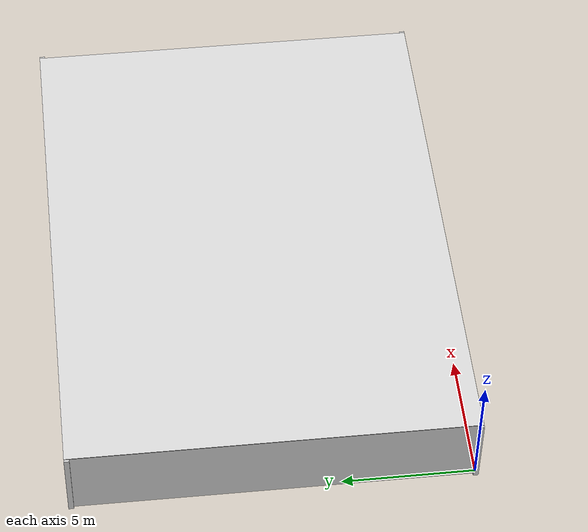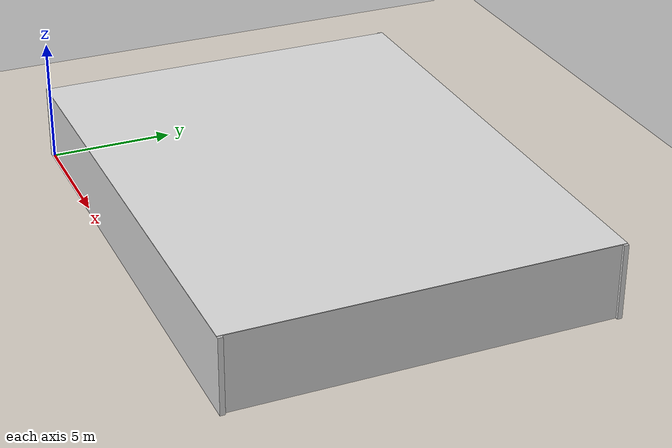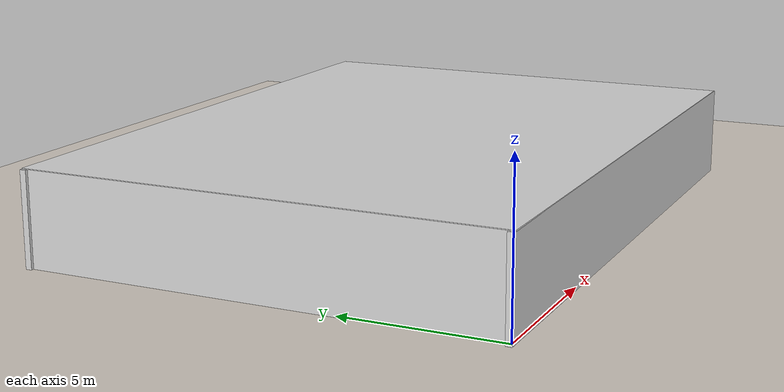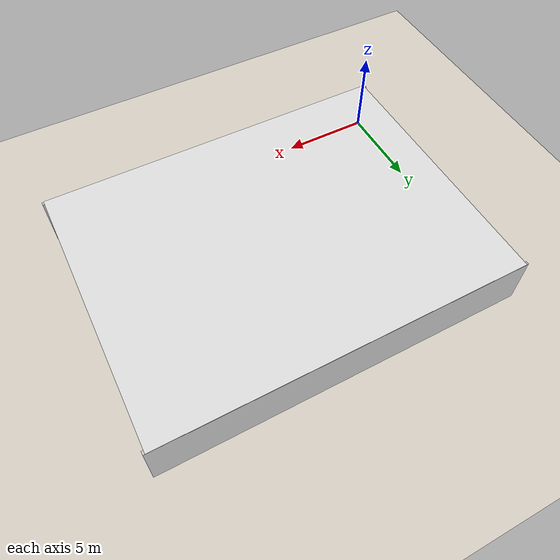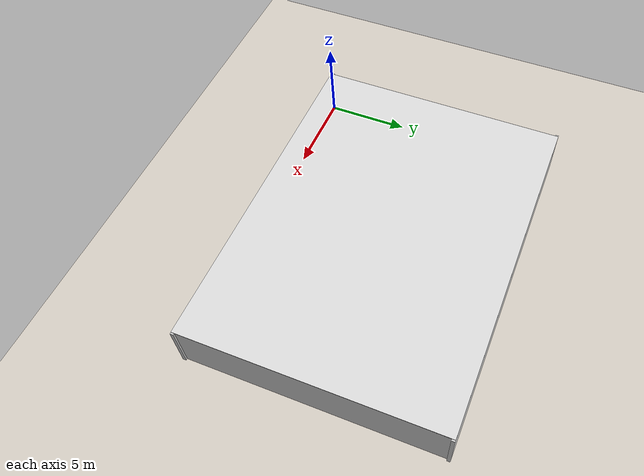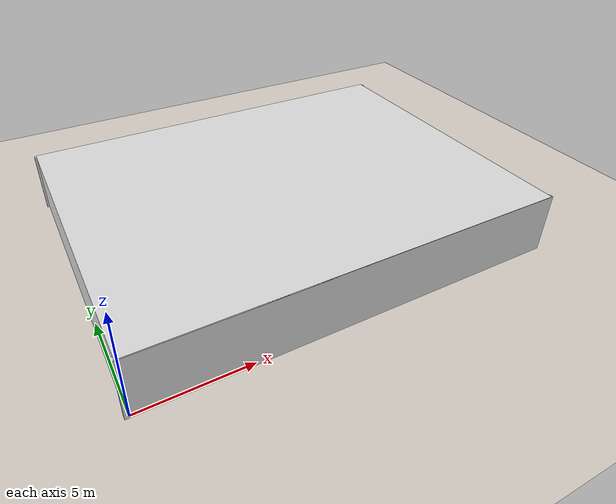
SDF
<?xml version="1.0" ?>
<sdf version="1.9">
  <world name="indoor_office">

    <!-- ═══════════════════════════════ PLUGINS ═══════════════════════════════ -->
    <physics type="ode">
      <max_step_size>0.008</max_step_size>
      <real_time_factor>1.0</real_time_factor>
    </physics>
    <plugin name="gz::sim::systems::Physics"         filename="gz-sim-physics-system"/>
    <plugin name="gz::sim::systems::UserCommands"    filename="gz-sim-user-commands-system"/>
    <plugin name="gz::sim::systems::SceneBroadcaster" filename="gz-sim-scene-broadcaster-system"/>
    <plugin name="gz::sim::systems::Contact"         filename="gz-sim-contact-system"/>
    <plugin name="gz::sim::systems::Sensors"         filename="gz-sim-sensors-system">
      <render_engine>ogre2</render_engine>
    </plugin>
    <!-- IMU: physics-based sensor, needs its own system (separate from Sensors/ogre2) -->
    <plugin name="gz::sim::systems::Imu"             filename="gz-sim-imu-system"/>
    <!-- Particle emitter: required for smoke/fog particle_emitter elements in the world -->
    <plugin name="gz::sim::systems::ParticleEmitter" filename="gz-sim-particle-emitter-system"/>

    <!-- ═══════════════════════════════ SCENE ════════════════════════════════ -->
    <scene>
      <ambient>0.6 0.6 0.6 1</ambient>
      <background>0.4 0.4 0.4 1</background>
      <shadows>0</shadows>
      <grid>false</grid>
    </scene>

    <light type="directional" name="ceiling_light">
      <cast_shadows>false</cast_shadows>
      <pose>10 7.5 8 0 0 0</pose>
      <diffuse>0.9 0.9 0.85 1</diffuse>
      <specular>0.3 0.3 0.3 1</specular>
      <direction>0 0 -1</direction>
      <attenuation>
        <range>30</range>
        <constant>0.5</constant>
        <linear>0.01</linear>
        <quadratic>0.001</quadratic>
      </attenuation>
    </light>

    <!-- ══════════════════════════ GROUND PLANE ═══════════════════════════════ -->
    <model name="ground_plane">
      <static>true</static>
      <link name="link">
        <collision name="collision">
          <geometry><plane><normal>0 0 1</normal><size>100 100</size></plane></geometry>
        </collision>
        <visual name="visual">
          <geometry><plane><normal>0 0 1</normal><size>100 100</size></plane></geometry>
          <material>
            <ambient>0.85 0.82 0.78 1</ambient>
            <diffuse>0.85 0.82 0.78 1</diffuse>
            <specular>0.1 0.1 0.1 1</specular>
          </material>
        </visual>
      </link>
    </model>

    <!-- ══════════════════════════ OUTER WALLS ════════════════════════════════ -->
    <!-- South wall — y=0 -->
    <model name="wall_south">
      <static>true</static>
      <pose>10 0 1.5 0 0 0</pose>
      <link name="link">
        <collision name="col"><geometry><box><size>20.4 0.2 3.0</size></box></geometry></collision>
        <visual name="vis">
          <geometry><box><size>20.4 0.2 3.0</size></box></geometry>
          <material><ambient>0.82 0.82 0.82 1</ambient><diffuse>0.82 0.82 0.82 1</diffuse></material>
        </visual>
      </link>
    </model>

    <!-- North wall — y=15 -->
    <model name="wall_north">
      <static>true</static>
      <pose>10 15 1.5 0 0 0</pose>
      <link name="link">
        <collision name="col"><geometry><box><size>20.4 0.2 3.0</size></box></geometry></collision>
        <visual name="vis">
          <geometry><box><size>20.4 0.2 3.0</size></box></geometry>
          <material><ambient>0.82 0.82 0.82 1</ambient><diffuse>0.82 0.82 0.82 1</diffuse></material>
        </visual>
      </link>
    </model>

    <!-- West wall — x=0 -->
    <model name="wall_west">
      <static>true</static>
      <pose>0 7.5 1.5 0 0 0</pose>
      <link name="link">
        <collision name="col"><geometry><box><size>0.2 15.0 3.0</size></box></geometry></collision>
        <visual name="vis">
          <geometry><box><size>0.2 15.0 3.0</size></box></geometry>
          <material><ambient>0.82 0.82 0.82 1</ambient><diffuse>0.82 0.82 0.82 1</diffuse></material>
        </visual>
      </link>
    </model>

    <!-- East wall — x=20 -->
    <model name="wall_east">
      <static>true</static>
      <pose>20 7.5 1.5 0 0 0</pose>
      <link name="link">
        <collision name="col"><geometry><box><size>0.2 15.0 3.0</size></box></geometry></collision>
        <visual name="vis">
          <geometry><box><size>0.2 15.0 3.0</size></box></geometry>
          <material><ambient>0.82 0.82 0.82 1</ambient><diffuse>0.82 0.82 0.82 1</diffuse></material>
        </visual>
      </link>
    </model>

    <!-- ════════════════════════ INTERIOR WALLS ═══════════════════════════════ -->

    <!-- Office A / B divider (x=9, y=[0,6.5], door at y=[2.5,3.5]) -->
    <model name="wall_ab_south">
      <static>true</static>
      <pose>9 1.25 1.5 0 0 0</pose>
      <link name="link">
        <collision name="col"><geometry><box><size>0.15 2.5 3.0</size></box></geometry></collision>
        <visual name="vis">
          <geometry><box><size>0.15 2.5 3.0</size></box></geometry>
          <material><ambient>0.78 0.78 0.78 1</ambient><diffuse>0.78 0.78 0.78 1</diffuse></material>
        </visual>
      </link>
    </model>
    <model name="wall_ab_north">
      <static>true</static>
      <pose>9 5.0 1.5 0 0 0</pose>
      <link name="link">
        <collision name="col"><geometry><box><size>0.15 3.0 3.0</size></box></geometry></collision>
        <visual name="vis">
          <geometry><box><size>0.15 3.0 3.0</size></box></geometry>
          <material><ambient>0.78 0.78 0.78 1</ambient><diffuse>0.78 0.78 0.78 1</diffuse></material>
        </visual>
      </link>
    </model>
    <!-- Door header above Office A/B door -->
    <model name="wall_ab_door_header">
      <static>true</static>
      <pose>9 3.0 2.75 0 0 0</pose>
      <link name="link">
        <collision name="col"><geometry><box><size>0.15 1.0 0.5</size></box></geometry></collision>
        <visual name="vis">
          <geometry><box><size>0.15 1.0 0.5</size></box></geometry>
          <material><ambient>0.78 0.78 0.78 1</ambient><diffuse>0.78 0.78 0.78 1</diffuse></material>
        </visual>
      </link>
    </model>

    <!-- Office → Corridor wall (y=6.5, door at x=[2,3] and x=[14,15]) -->
    <model name="wall_offices_corridor_west">
      <static>true</static>
      <pose>1.0 6.5 1.5 0 0 0</pose>
      <link name="link">
        <collision name="col"><geometry><box><size>2.0 0.15 3.0</size></box></geometry></collision>
        <visual name="vis">
          <geometry><box><size>2.0 0.15 3.0</size></box></geometry>
          <material><ambient>0.78 0.78 0.78 1</ambient><diffuse>0.78 0.78 0.78 1</diffuse></material>
        </visual>
      </link>
    </model>
    <model name="wall_offices_corridor_mid">
      <static>true</static>
      <pose>8.5 6.5 1.5 0 0 0</pose>
      <link name="link">
        <collision name="col"><geometry><box><size>11.0 0.15 3.0</size></box></geometry></collision>
        <visual name="vis">
          <geometry><box><size>11.0 0.15 3.0</size></box></geometry>
          <material><ambient>0.78 0.78 0.78 1</ambient><diffuse>0.78 0.78 0.78 1</diffuse></material>
        </visual>
      </link>
    </model>
    <model name="wall_offices_corridor_east">
      <static>true</static>
      <pose>17.5 6.5 1.5 0 0 0</pose>
      <link name="link">
        <collision name="col"><geometry><box><size>5.0 0.15 3.0</size></box></geometry></collision>
        <visual name="vis">
          <geometry><box><size>5.0 0.15 3.0</size></box></geometry>
          <material><ambient>0.78 0.78 0.78 1</ambient><diffuse>0.78 0.78 0.78 1</diffuse></material>
        </visual>
      </link>
    </model>
    <!-- Door headers above corridor doors -->
    <model name="wall_door_header_officeA">
      <static>true</static>
      <pose>2.5 6.5 2.75 0 0 0</pose>
      <link name="link">
        <collision name="col"><geometry><box><size>1.0 0.15 0.5</size></box></geometry></collision>
        <visual name="vis">
          <geometry><box><size>1.0 0.15 0.5</size></box></geometry>
          <material><ambient>0.78 0.78 0.78 1</ambient><diffuse>0.78 0.78 0.78 1</diffuse></material>
        </visual>
      </link>
    </model>
    <model name="wall_door_header_officeB">
      <static>true</static>
      <pose>14.5 6.5 2.75 0 0 0</pose>
      <link name="link">
        <collision name="col"><geometry><box><size>1.0 0.15 0.5</size></box></geometry></collision>
        <visual name="vis">
          <geometry><box><size>1.0 0.15 0.5</size></box></geometry>
          <material><ambient>0.78 0.78 0.78 1</ambient><diffuse>0.78 0.78 0.78 1</diffuse></material>
        </visual>
      </link>
    </model>

    <!-- Corridor → Meeting Room wall (y=9.5, door at x=[9,10]) -->
    <model name="wall_corridor_meeting_west">
      <static>true</static>
      <pose>4.5 9.5 1.5 0 0 0</pose>
      <link name="link">
        <collision name="col"><geometry><box><size>9.0 0.15 3.0</size></box></geometry></collision>
        <visual name="vis">
          <geometry><box><size>9.0 0.15 3.0</size></box></geometry>
          <material><ambient>0.78 0.78 0.78 1</ambient><diffuse>0.78 0.78 0.78 1</diffuse></material>
        </visual>
      </link>
    </model>
    <model name="wall_corridor_meeting_east">
      <static>true</static>
      <pose>15.0 9.5 1.5 0 0 0</pose>
      <link name="link">
        <collision name="col"><geometry><box><size>10.0 0.15 3.0</size></box></geometry></collision>
        <visual name="vis">
          <geometry><box><size>10.0 0.15 3.0</size></box></geometry>
          <material><ambient>0.78 0.78 0.78 1</ambient><diffuse>0.78 0.78 0.78 1</diffuse></material>
        </visual>
      </link>
    </model>
    <model name="wall_door_header_meeting">
      <static>true</static>
      <pose>9.5 9.5 2.75 0 0 0</pose>
      <link name="link">
        <collision name="col"><geometry><box><size>1.0 0.15 0.5</size></box></geometry></collision>
        <visual name="vis">
          <geometry><box><size>1.0 0.15 0.5</size></box></geometry>
          <material><ambient>0.78 0.78 0.78 1</ambient><diffuse>0.78 0.78 0.78 1</diffuse></material>
        </visual>
      </link>
    </model>

    <!-- ══════════════════════ FURNITURE — OFFICE A ═══════════════════════════ -->
    <!-- Keep x=[0,3], y=[0,4] clear around robot spawn at (1,1) -->

    <!-- Desk A1 -->
    <model name="desk_a1">
      <static>true</static>
      <pose>4.5 1.5 0.375 0 0 0</pose>
      <link name="link">
        <collision name="col"><geometry><box><size>1.4 0.7 0.75</size></box></geometry></collision>
        <visual name="vis">
          <geometry><box><size>1.4 0.7 0.75</size></box></geometry>
          <material><ambient>0.38 0.26 0.14 1</ambient><diffuse>0.38 0.26 0.14 1</diffuse></material>
        </visual>
      </link>
    </model>
    <!-- Chair A1 -->
    <model name="chair_a1">
      <static>true</static>
      <pose>4.5 2.4 0.45 0 0 0</pose>
      <link name="link">
        <collision name="col"><geometry><box><size>0.45 0.45 0.9</size></box></geometry></collision>
        <visual name="vis">
          <geometry><box><size>0.45 0.45 0.9</size></box></geometry>
          <material><ambient>0.2 0.2 0.2 1</ambient><diffuse>0.2 0.2 0.2 1</diffuse></material>
        </visual>
      </link>
    </model>

    <!-- Desk A2 -->
    <model name="desk_a2">
      <static>true</static>
      <pose>7.0 4.5 0.375 0 0 0</pose>
      <link name="link">
        <collision name="col"><geometry><box><size>1.4 0.7 0.75</size></box></geometry></collision>
        <visual name="vis">
          <geometry><box><size>1.4 0.7 0.75</size></box></geometry>
          <material><ambient>0.38 0.26 0.14 1</ambient><diffuse>0.38 0.26 0.14 1</diffuse></material>
        </visual>
      </link>
    </model>
    <!-- Chair A2 -->
    <model name="chair_a2">
      <static>true</static>
      <pose>7.0 5.4 0.45 0 0 0</pose>
      <link name="link">
        <collision name="col"><geometry><box><size>0.45 0.45 0.9</size></box></geometry></collision>
        <visual name="vis">
          <geometry><box><size>0.45 0.45 0.9</size></box></geometry>
          <material><ambient>0.2 0.2 0.2 1</ambient><diffuse>0.2 0.2 0.2 1</diffuse></material>
        </visual>
      </link>
    </model>

    <!-- Filing cabinet A -->
    <model name="cabinet_a">
      <static>true</static>
      <pose>1.5 5.8 0.5 0 0 0</pose>
      <link name="link">
        <collision name="col"><geometry><box><size>0.5 0.45 1.0</size></box></geometry></collision>
        <visual name="vis">
          <geometry><box><size>0.5 0.45 1.0</size></box></geometry>
          <material><ambient>0.55 0.55 0.6 1</ambient><diffuse>0.55 0.55 0.6 1</diffuse></material>
        </visual>
      </link>
    </model>

    <!-- ══════════════════════ FURNITURE — OFFICE B ═══════════════════════════ -->

    <!-- Desk B1 -->
    <model name="desk_b1">
      <static>true</static>
      <pose>12.0 1.5 0.375 0 0 0</pose>
      <link name="link">
        <collision name="col"><geometry><box><size>1.4 0.7 0.75</size></box></geometry></collision>
        <visual name="vis">
          <geometry><box><size>1.4 0.7 0.75</size></box></geometry>
          <material><ambient>0.38 0.26 0.14 1</ambient><diffuse>0.38 0.26 0.14 1</diffuse></material>
        </visual>
      </link>
    </model>
    <!-- Chair B1 -->
    <model name="chair_b1">
      <static>true</static>
      <pose>12.0 2.4 0.45 0 0 0</pose>
      <link name="link">
        <collision name="col"><geometry><box><size>0.45 0.45 0.9</size></box></geometry></collision>
        <visual name="vis">
          <geometry><box><size>0.45 0.45 0.9</size></box></geometry>
          <material><ambient>0.2 0.2 0.2 1</ambient><diffuse>0.2 0.2 0.2 1</diffuse></material>
        </visual>
      </link>
    </model>

    <!-- Desk B2 -->
    <model name="desk_b2">
      <static>true</static>
      <pose>17.0 4.5 0.375 0 0 0</pose>
      <link name="link">
        <collision name="col"><geometry><box><size>1.4 0.7 0.75</size></box></geometry></collision>
        <visual name="vis">
          <geometry><box><size>1.4 0.7 0.75</size></box></geometry>
          <material><ambient>0.38 0.26 0.14 1</ambient><diffuse>0.38 0.26 0.14 1</diffuse></material>
        </visual>
      </link>
    </model>
    <!-- Chair B2 -->
    <model name="chair_b2">
      <static>true</static>
      <pose>17.0 5.4 0.45 0 0 0</pose>
      <link name="link">
        <collision name="col"><geometry><box><size>0.45 0.45 0.9</size></box></geometry></collision>
        <visual name="vis">
          <geometry><box><size>0.45 0.45 0.9</size></box></geometry>
          <material><ambient>0.2 0.2 0.2 1</ambient><diffuse>0.2 0.2 0.2 1</diffuse></material>
        </visual>
      </link>
    </model>

    <!-- Filing cabinet B -->
    <model name="cabinet_b">
      <static>true</static>
      <pose>19.2 5.8 0.5 0 0 0</pose>
      <link name="link">
        <collision name="col"><geometry><box><size>0.5 0.45 1.0</size></box></geometry></collision>
        <visual name="vis">
          <geometry><box><size>0.5 0.45 1.0</size></box></geometry>
          <material><ambient>0.55 0.55 0.6 1</ambient><diffuse>0.55 0.55 0.6 1</diffuse></material>
        </visual>
      </link>
    </model>

    <!-- ═════════════════════ FURNITURE — MEETING ROOM ════════════════════════ -->

    <!-- Conference table -->
    <model name="conf_table">
      <static>true</static>
      <pose>10.0 12.0 0.375 0 0 0</pose>
      <link name="link">
        <collision name="col"><geometry><box><size>3.6 1.4 0.75</size></box></geometry></collision>
        <visual name="vis">
          <geometry><box><size>3.6 1.4 0.75</size></box></geometry>
          <material><ambient>0.30 0.20 0.10 1</ambient><diffuse>0.30 0.20 0.10 1</diffuse></material>
        </visual>
      </link>
    </model>

    <!-- 6 chairs around conference table -->
    <model name="conf_chair_0"><static>true</static><pose>8.0 12.0 0.45 0 0 1.5708</pose>
      <link name="link">
        <collision name="col"><geometry><box><size>0.45 0.45 0.9</size></box></geometry></collision>
        <visual name="vis"><geometry><box><size>0.45 0.45 0.9</size></box></geometry>
          <material><ambient>0.18 0.18 0.18 1</ambient><diffuse>0.18 0.18 0.18 1</diffuse></material>
        </visual>
      </link>
    </model>
    <model name="conf_chair_1"><static>true</static><pose>9.2 12.0 0.45 0 0 1.5708</pose>
      <link name="link">
        <collision name="col"><geometry><box><size>0.45 0.45 0.9</size></box></geometry></collision>
        <visual name="vis"><geometry><box><size>0.45 0.45 0.9</size></box></geometry>
          <material><ambient>0.18 0.18 0.18 1</ambient><diffuse>0.18 0.18 0.18 1</diffuse></material>
        </visual>
      </link>
    </model>
    <model name="conf_chair_2"><static>true</static><pose>10.8 12.0 0.45 0 0 1.5708</pose>
      <link name="link">
        <collision name="col"><geometry><box><size>0.45 0.45 0.9</size></box></geometry></collision>
        <visual name="vis"><geometry><box><size>0.45 0.45 0.9</size></box></geometry>
          <material><ambient>0.18 0.18 0.18 1</ambient><diffuse>0.18 0.18 0.18 1</diffuse></material>
        </visual>
      </link>
    </model>
    <model name="conf_chair_3"><static>true</static><pose>12.0 12.0 0.45 0 0 1.5708</pose>
      <link name="link">
        <collision name="col"><geometry><box><size>0.45 0.45 0.9</size></box></geometry></collision>
        <visual name="vis"><geometry><box><size>0.45 0.45 0.9</size></box></geometry>
          <material><ambient>0.18 0.18 0.18 1</ambient><diffuse>0.18 0.18 0.18 1</diffuse></material>
        </visual>
      </link>
    </model>
    <model name="conf_chair_4"><static>true</static><pose>9.2 13.0 0.45 0 0 0</pose>
      <link name="link">
        <collision name="col"><geometry><box><size>0.45 0.45 0.9</size></box></geometry></collision>
        <visual name="vis"><geometry><box><size>0.45 0.45 0.9</size></box></geometry>
          <material><ambient>0.18 0.18 0.18 1</ambient><diffuse>0.18 0.18 0.18 1</diffuse></material>
        </visual>
      </link>
    </model>
    <model name="conf_chair_5"><static>true</static><pose>10.8 13.0 0.45 0 0 0</pose>
      <link name="link">
        <collision name="col"><geometry><box><size>0.45 0.45 0.9</size></box></geometry></collision>
        <visual name="vis"><geometry><box><size>0.45 0.45 0.9</size></box></geometry>
          <material><ambient>0.18 0.18 0.18 1</ambient><diffuse>0.18 0.18 0.18 1</diffuse></material>
        </visual>
      </link>
    </model>

    <!-- Whiteboard on north wall of meeting room -->
    <model name="whiteboard">
      <static>true</static>
      <pose>10.0 14.9 1.5 0 0 0</pose>
      <link name="link">
        <collision name="col"><geometry><box><size>2.0 0.05 1.2</size></box></geometry></collision>
        <visual name="vis">
          <geometry><box><size>2.0 0.05 1.2</size></box></geometry>
          <material><ambient>0.95 0.95 0.95 1</ambient><diffuse>0.95 0.95 0.95 1</diffuse></material>
        </visual>
      </link>
    </model>

    <!-- ══════════════════════════════ CEILING ═════════════════════════════════ -->
    <model name="ceiling">
      <static>true</static>
      <pose>10 7.5 3.0 0 0 0</pose>
      <link name="link">
        <visual name="vis">
          <geometry><box><size>20.2 15.2 0.05</size></box></geometry>
          <material>
            <ambient>0.88 0.88 0.88 1</ambient>
            <diffuse>0.88 0.88 0.88 1</diffuse>
            <specular>0.05 0.05 0.05 1</specular>
          </material>
        </visual>
      </link>
    </model>

  </world>
</sdf>
